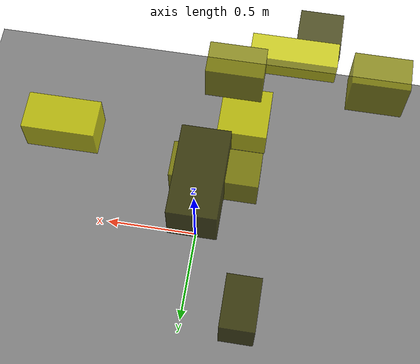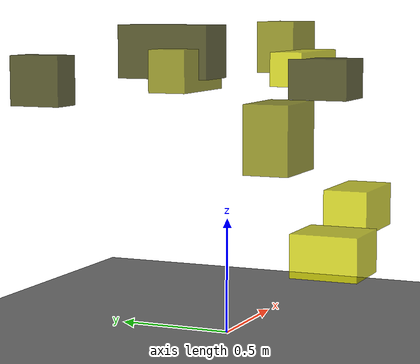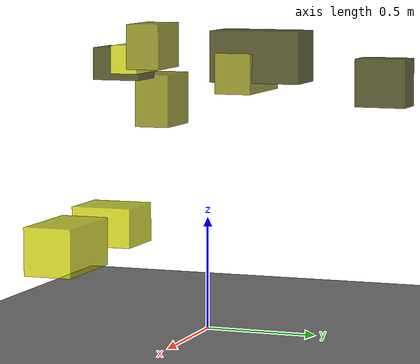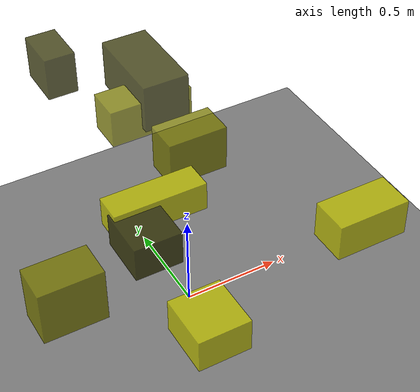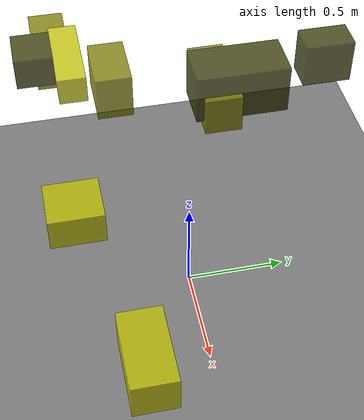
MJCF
<?xml version="1.0"?>
<mujoco model="obstacle_scene">
  <compiler angle="radian" coordinate="local"/>
  <option timestep="0.001" gravity="0 0 -9.81"/>

  <asset>
    <material name="obstacle_mat" rgba="0.8 0.8 0.0 0.8"/>
    <material name="ground_mat" rgba="0.5 0.5 0.5 1"/>
  </asset>

  <worldbody>
    <!-- Ground plane -->
    <geom name="ground" type="plane" size="3 3 0.1" material="ground_mat"/>

    <!-- Obstacles -->
    <body name="obstacle_0" pos="-0.499800 -0.609215 1.142522">
      <geom name="obs_0" type="box" size="0.099938 0.113967 0.075497" rgba="0.2 0.2 0.0 0.8"/>
    </body>
    <body name="obstacle_1" pos="-0.147975 -0.320251 1.249209">
      <geom name="obs_1" type="box" size="0.127711 0.076492 0.100753" rgba="0.5 0.5 0.0 0.8"/>
    </body>
    <body name="obstacle_2" pos="-0.394765 -0.483009 1.177742">
      <geom name="obs_2" type="box" size="0.199089 0.063198 0.064120" rgba="0.8 0.8 0.0 0.8"/>
    </body>
    <body name="obstacle_3" pos="-0.320703 0.717233 1.096766">
      <geom name="obs_3" type="box" size="0.074269 0.115095 0.106764" rgba="0.2 0.2 0.0 0.8"/>
    </body>
    <body name="obstacle_4" pos="-0.127712 0.136953 1.145621">
      <geom name="obs_4" type="box" size="0.193513 0.081349 0.088605" rgba="0.5 0.5 0.0 0.8"/>
    </body>
    <body name="obstacle_5" pos="0.766467 -0.345042 0.464254">
      <geom name="obs_5" type="box" size="0.194434 0.103752 0.100833" rgba="0.8 0.8 0.0 0.8"/>
    </body>
    <body name="obstacle_6" pos="-0.070815 0.226282 1.218349">
      <geom name="obs_6" type="box" size="0.106647 0.204055 0.112998" rgba="0.2 0.2 0.0 0.8"/>
    </body>
    <body name="obstacle_7" pos="-0.820511 -0.542732 0.947241">
      <geom name="obs_7" type="box" size="0.137393 0.084527 0.125755" rgba="0.5 0.5 0.0 0.8"/>
    </body>
    <body name="obstacle_8" pos="-0.187819 -0.543380 0.419204">
      <geom name="obs_8" type="box" size="0.132054 0.141737 0.089587" rgba="0.8 0.8 0.0 0.8"/>
    </body>
  </worldbody>
</mujoco>
